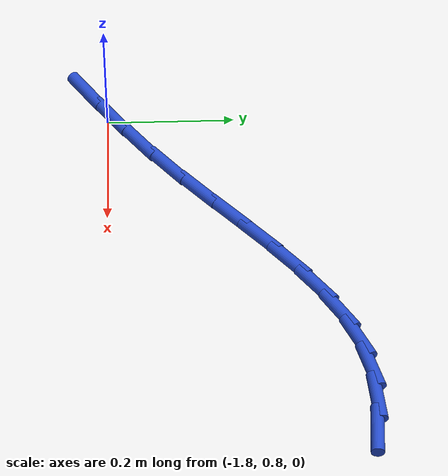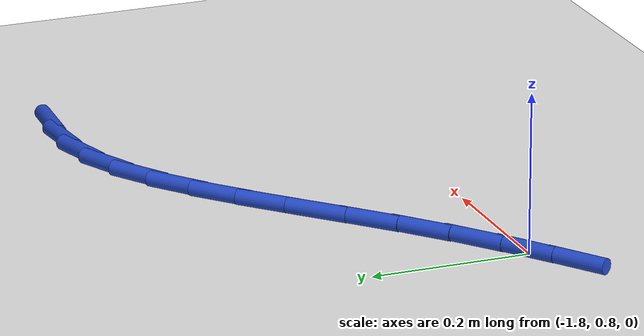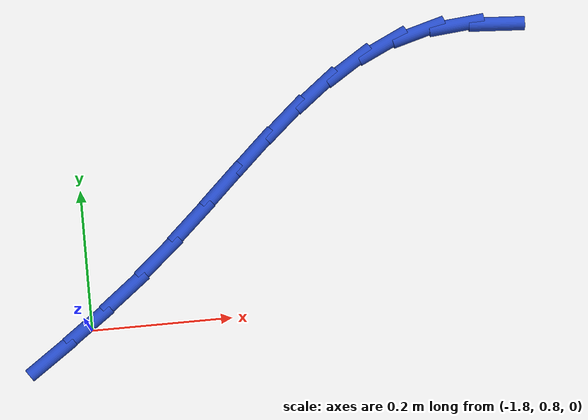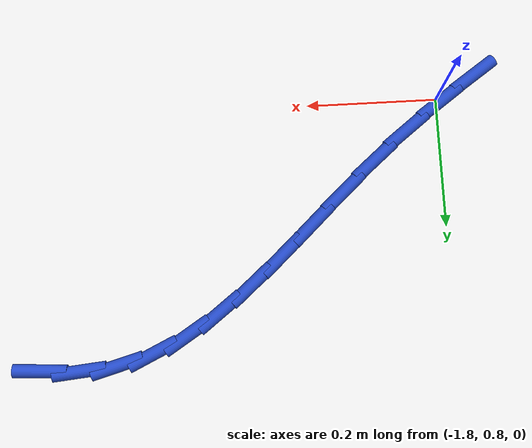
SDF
<sdf version="1.6">
 <world name="default">
  <model name="ground_plane">
   <static>1</static>
   <link name="link">
    <collision name="collision">
     <geometry><plane><normal>0 0 1</normal><size>100 100</size></plane></geometry>
     <surface><friction><ode><mu>100</mu><mu2>50</mu2></ode></friction></surface>
    </collision>
    <visual name="visual">
     <cast_shadows>0</cast_shadows>
     <geometry><plane><normal>0 0 1</normal><size>100 100</size></plane></geometry>
     <material>
      <script><uri>file://media/materials/scripts/gazebo.material</uri><name>Gazebo/WhiteGlow</name></script>
     </material>
    </visual>
   </link>
  </model>
  <model name="line">
   <link name="link_28">
    <pose>-1.1853617245657533 1.186225542166846 0.01 0 1.57 -0.05948893361728902</pose>
    <collision name="collision">
     <geometry><cylinder><radius>0.01</radius><length>0.08</length></cylinder></geometry>
    </collision>
    <visual name="visual">
     <material>
      <script><name>Gazebo/Blue</name><uri>file://media/materials/scripts/gazebo.material</uri></script>
     </material>
     <geometry><cylinder><radius>0.01</radius><length>0.08</length></cylinder></geometry>
    </visual>
   </link>
   <link name="link_29">
    <pose>-1.2427460140315656 1.1896433050499504 0.01 0 1.57 0.0953247398724831</pose>
    <collision name="collision">
     <geometry><cylinder><radius>0.01</radius><length>0.08</length></cylinder></geometry>
    </collision>
    <visual name="visual">
     <material>
      <script><name>Gazebo/Blue</name><uri>file://media/materials/scripts/gazebo.material</uri></script>
     </material>
     <geometry><cylinder><radius>0.01</radius><length>0.08</length></cylinder></geometry>
    </visual>
   </link>
   <link name="link_30">
    <pose>-1.2981539785811673 1.1843454988004904 0.01 0 1.57 0.2747034943732904</pose>
    <collision name="collision">
     <geometry><cylinder><radius>0.01</radius><length>0.08</length></cylinder></geometry>
    </collision>
    <visual name="visual">
     <material>
      <script><name>Gazebo/Blue</name><uri>file://media/materials/scripts/gazebo.material</uri></script>
     </material>
     <geometry><cylinder><radius>0.01</radius><length>0.08</length></cylinder></geometry>
    </visual>
   </link>
   <link name="link_31">
    <pose>-1.351265391483296 1.1693771872491896 0.01 0 1.57 0.4418718479993616</pose>
    <collision name="collision">
     <geometry><cylinder><radius>0.01</radius><length>0.08</length></cylinder></geometry>
    </collision>
    <visual name="visual">
     <material>
      <script><name>Gazebo/Blue</name><uri>file://media/materials/scripts/gazebo.material</uri></script>
     </material>
     <geometry><cylinder><radius>0.01</radius><length>0.08</length></cylinder></geometry>
    </visual>
   </link>
   <link name="link_32">
    <pose>-1.4022855852121208 1.1452411019272595 0.01 0 1.57 0.5706760600563008</pose>
    <collision name="collision">
     <geometry><cylinder><radius>0.01</radius><length>0.08</length></cylinder></geometry>
    </collision>
    <visual name="visual">
     <material>
      <script><name>Gazebo/Blue</name><uri>file://media/materials/scripts/gazebo.material</uri></script>
     </material>
     <geometry><cylinder><radius>0.01</radius><length>0.08</length></cylinder></geometry>
    </visual>
   </link>
   <link name="link_33">
    <pose>-1.4517890050051827 1.1134637291540335 0.01 0 1.57 0.6622639959079313</pose>
    <collision name="collision">
     <geometry><cylinder><radius>0.01</radius><length>0.08</length></cylinder></geometry>
    </collision>
    <visual name="visual">
     <material>
      <script><name>Gazebo/Blue</name><uri>file://media/materials/scripts/gazebo.material</uri></script>
     </material>
     <geometry><cylinder><radius>0.01</radius><length>0.08</length></cylinder></geometry>
    </visual>
   </link>
   <link name="link_34">
    <pose>-1.500357750301534 1.0755927846026498 0.01 0 1.57 0.7214978636112513</pose>
    <collision name="collision">
     <geometry><cylinder><radius>0.01</radius><length>0.08</length></cylinder></geometry>
    </collision>
    <visual name="visual">
     <material>
      <script><name>Gazebo/Blue</name><uri>file://media/materials/scripts/gazebo.material</uri></script>
     </material>
     <geometry><cylinder><radius>0.01</radius><length>0.08</length></cylinder></geometry>
    </visual>
   </link>
   <link name="link_35">
    <pose>-1.548573920540226 1.0331759839462449 0.01 0 1.57 0.7531194467725059</pose>
    <collision name="collision">
     <geometry><cylinder><radius>0.01</radius><length>0.08</length></cylinder></geometry>
    </collision>
    <visual name="visual">
     <material>
      <script><name>Gazebo/Blue</name><uri>file://media/materials/scripts/gazebo.material</uri></script>
     </material>
     <geometry><cylinder><radius>0.01</radius><length>0.08</length></cylinder></geometry>
    </visual>
   </link>
   <link name="link_36">
    <pose>-1.5970196151603113 0.9877610428579567 0.01 0 1.57 0.7605189263048902</pose>
    <collision name="collision">
     <geometry><cylinder><radius>0.01</radius><length>0.08</length></cylinder></geometry>
    </collision>
    <visual name="visual">
     <material>
      <script><name>Gazebo/Blue</name><uri>file://media/materials/scripts/gazebo.material</uri></script>
     </material>
     <geometry><cylinder><radius>0.01</radius><length>0.08</length></cylinder></geometry>
    </visual>
   </link>
   <link name="link_37">
    <pose>-1.6462769336008412 0.9408956770109224 0.01 0 1.57 0.7455608852178887</pose>
    <collision name="collision">
     <geometry><cylinder><radius>0.01</radius><length>0.08</length></cylinder></geometry>
    </collision>
    <visual name="visual">
     <material>
      <script><name>Gazebo/Blue</name><uri>file://media/materials/scripts/gazebo.material</uri></script>
     </material>
     <geometry><cylinder><radius>0.01</radius><length>0.08</length></cylinder></geometry>
    </visual>
   </link>
   <link name="link_38">
    <pose>-1.6969279753008684 0.8941276020782787 0.01 0 1.57 0.7088446693378042</pose>
    <collision name="collision">
     <geometry><cylinder><radius>0.01</radius><length>0.08</length></cylinder></geometry>
    </collision>
    <visual name="visual">
     <material>
      <script><name>Gazebo/Blue</name><uri>file://media/materials/scripts/gazebo.material</uri></script>
     </material>
     <geometry><cylinder><radius>0.01</radius><length>0.08</length></cylinder></geometry>
    </visual>
   </link>
   <link name="link_39">
    <pose>-1.7495522843047404 0.8490011109297111 0.01 0 1.57 0.6613771956351069</pose>
    <collision name="collision">
     <geometry><cylinder><radius>0.01</radius><length>0.08</length></cylinder></geometry>
    </collision>
    <visual name="visual">
     <material>
      <script><name>Gazebo/Blue</name><uri>file://media/materials/scripts/gazebo.material</uri></script>
     </material>
     <geometry><cylinder><radius>0.01</radius><length>0.08</length></cylinder></geometry>
    </visual>
   </link>
   <link name="link_40">
    <pose>-1.80425507655277 0.8064251613653941 0.01 0 1.57 0.6272358144038134</pose>
    <collision name="collision">
     <geometry><cylinder><radius>0.01</radius><length>0.08</length></cylinder></geometry>
    </collision>
    <visual name="visual">
     <material>
      <script><name>Gazebo/Blue</name><uri>file://media/materials/scripts/gazebo.material</uri></script>
     </material>
     <geometry><cylinder><radius>0.01</radius><length>0.08</length></cylinder></geometry>
    </visual>
   </link>
   <link name="link_41">
    <pose>-1.8601146134113302 0.765933164912642 0.01 0 1.57 0.6093116918086541</pose>
    <collision name="collision">
     <geometry><cylinder><radius>0.01</radius><length>0.08</length></cylinder></geometry>
    </collision>
    <visual name="visual">
     <material>
      <script><name>Gazebo/Blue</name><uri>file://media/materials/scripts/gazebo.material</uri></script>
     </material>
     <geometry><cylinder><radius>0.01</radius><length>0.08</length></cylinder></geometry>
    </visual>
   </link>
  </model>
 </world>
</sdf>
